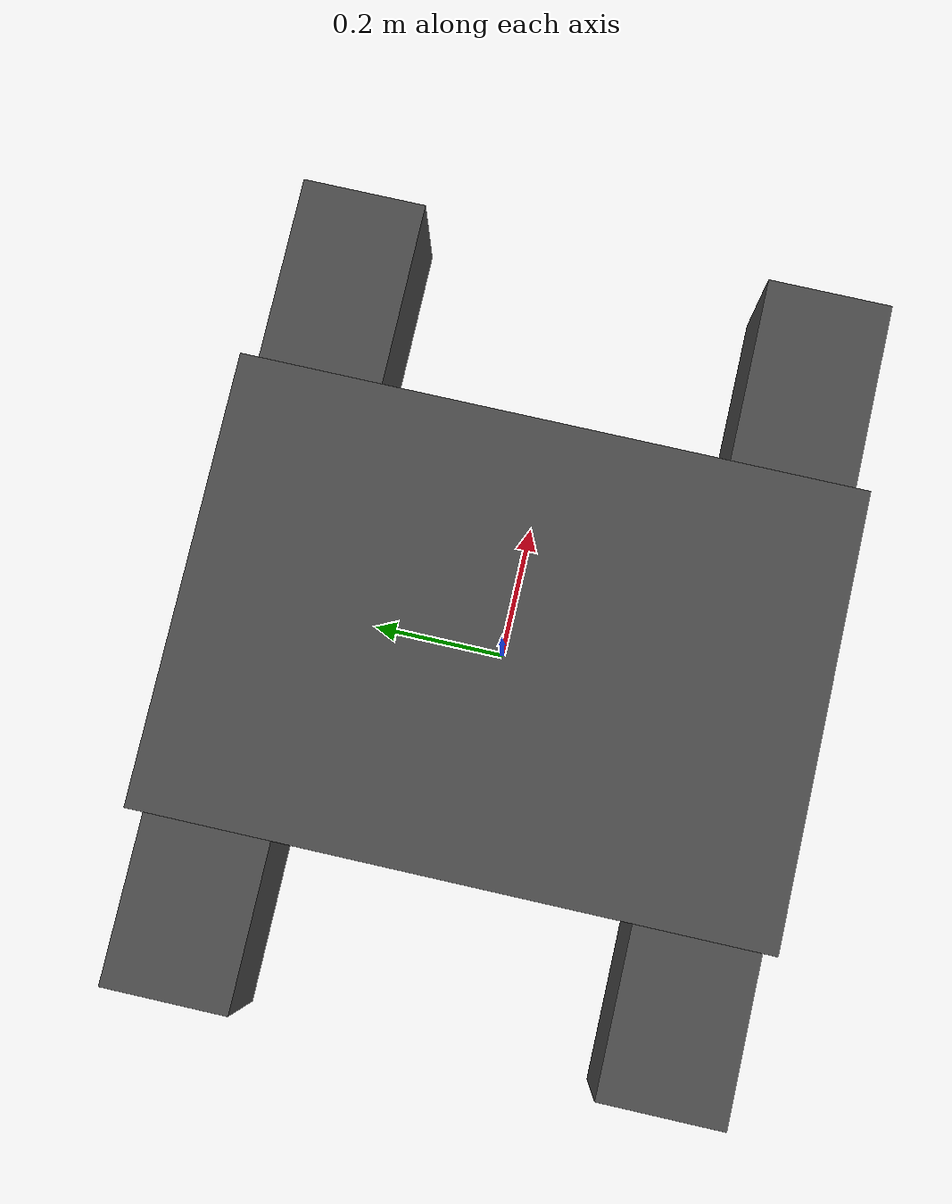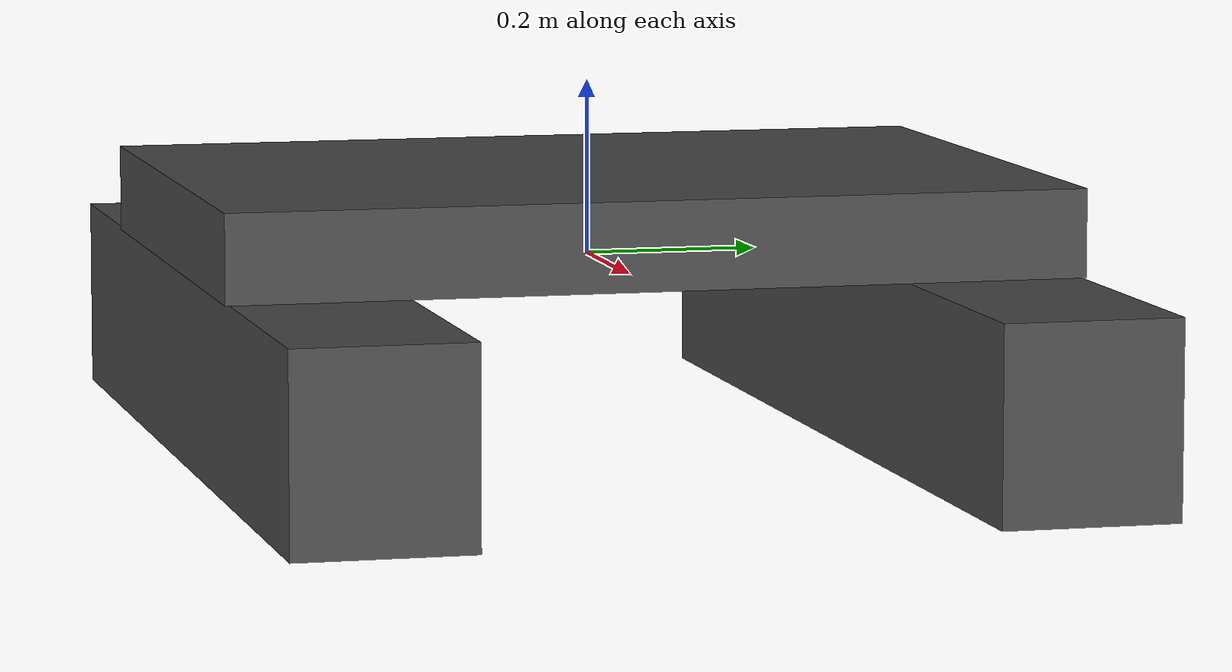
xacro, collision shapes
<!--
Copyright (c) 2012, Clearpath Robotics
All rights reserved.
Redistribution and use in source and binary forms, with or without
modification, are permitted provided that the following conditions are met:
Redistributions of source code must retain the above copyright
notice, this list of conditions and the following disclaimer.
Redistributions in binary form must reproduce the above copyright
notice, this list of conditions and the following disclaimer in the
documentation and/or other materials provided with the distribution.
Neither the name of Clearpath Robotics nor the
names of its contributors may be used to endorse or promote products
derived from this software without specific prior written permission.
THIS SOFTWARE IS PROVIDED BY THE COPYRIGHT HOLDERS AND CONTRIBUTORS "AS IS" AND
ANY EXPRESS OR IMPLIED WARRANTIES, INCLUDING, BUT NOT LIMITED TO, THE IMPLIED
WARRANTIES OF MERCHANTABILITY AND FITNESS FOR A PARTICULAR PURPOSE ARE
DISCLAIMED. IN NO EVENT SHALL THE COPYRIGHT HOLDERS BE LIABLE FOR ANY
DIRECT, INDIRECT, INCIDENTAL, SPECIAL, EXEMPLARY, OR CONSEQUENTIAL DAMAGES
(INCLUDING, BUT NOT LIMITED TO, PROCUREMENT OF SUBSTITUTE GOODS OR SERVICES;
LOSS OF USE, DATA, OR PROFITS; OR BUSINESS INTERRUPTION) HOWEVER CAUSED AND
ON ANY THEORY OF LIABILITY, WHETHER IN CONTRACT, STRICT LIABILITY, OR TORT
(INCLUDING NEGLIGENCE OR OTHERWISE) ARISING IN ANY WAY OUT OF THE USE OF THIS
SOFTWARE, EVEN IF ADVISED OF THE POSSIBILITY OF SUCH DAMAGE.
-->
<?xml version="1.0"?>
<robot xmlns:xacro="http://ros.org/wiki/xacro" name="kingfisher">
  <xacro:include filename="$(find kingfisher_description)/urdf/materials.urdf.xacro"/>

  <!-- === Physical parameters (tunable) === -->
  <!-- Total mass including payload/sensors, from the IsaacLab kingfisher env. -->
  <xacro:property name="kf_mass" value="35.0"/>
  <xacro:property name="kf_com_z" value="-0.05"/>
  <!-- Box approximation of a 35 kg, 1.34 x 0.97 x 0.32 m body. -->
  <xacro:property name="kf_ixx" value="3.0"/>
  <xacro:property name="kf_iyy" value="5.5"/>
  <xacro:property name="kf_izz" value="8.0"/>
  <!-- Hull geometry used for the collision boxes. -->
  <xacro:property name="kf_hull_length" value="1.3"/>
  <xacro:property name="kf_hull_width" value="0.2"/>
  <xacro:property name="kf_hull_height" value="0.22"/>
  <xacro:property name="kf_hull_y" value="0.38"/>

  <link name="base_link">
    <!-- Hull mesh. The STL is modelled y-up / x-right, hence the rotation. -->
    <visual name="hull_visual">
      <origin xyz="0 0 0" rpy="${pi/2} 0 ${pi/2}"/>
      <geometry>
        <mesh filename="package://kingfisher_description/meshes/kingfisher_base.stl"/>
      </geometry>
      <material name="DarkGray"/>
    </visual>
    <visual name="left_panel_visual">
      <origin xyz="0 -0.35 0.05" rpy="${pi/2} 0 ${pi/2}"/>
      <geometry>
        <mesh filename="package://kingfisher_description/meshes/left_panel.stl"/>
      </geometry>
      <material name="Yellow"/>
    </visual>
    <visual name="right_panel_visual">
      <origin xyz="0 0.35 0.05" rpy="${pi/2} 0 ${-pi/2}"/>
      <geometry>
        <mesh filename="package://kingfisher_description/meshes/right_panel.stl"/>
      </geometry>
      <material name="Yellow"/>
    </visual>

    <!-- Primitive collisions: one box per hull plus the deck. -->
    <collision name="left_hull_collision">
      <origin xyz="0.03 ${kf_hull_y} ${-kf_hull_height/2}" rpy="0 0 0"/>
      <geometry>
        <box size="${kf_hull_length} ${kf_hull_width} ${kf_hull_height}"/>
      </geometry>
    </collision>
    <collision name="right_hull_collision">
      <origin xyz="0.03 ${-kf_hull_y} ${-kf_hull_height/2}" rpy="0 0 0"/>
      <geometry>
        <box size="${kf_hull_length} ${kf_hull_width} ${kf_hull_height}"/>
      </geometry>
    </collision>
    <collision name="deck_collision">
      <origin xyz="0 0 0.05" rpy="0 0 0"/>
      <geometry>
        <box size="0.7 0.97 0.1"/>
      </geometry>
    </collision>

    <inertial>
      <mass value="${kf_mass}"/>
      <origin xyz="0 0 ${kf_com_z}" rpy="0 0 0"/>
      <inertia ixx="${kf_ixx}" ixy="0" ixz="0" iyy="${kf_iyy}" iyz="0" izz="${kf_izz}"/>
    </inertial>
  </link>
</robot>
